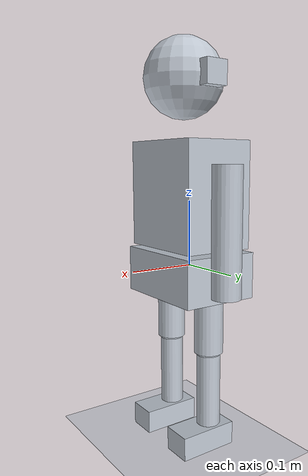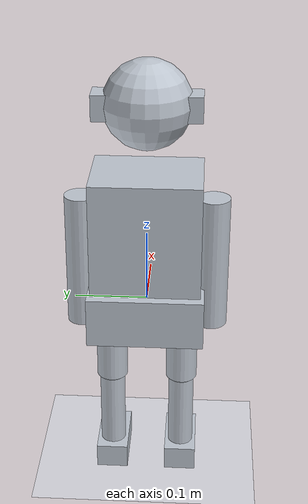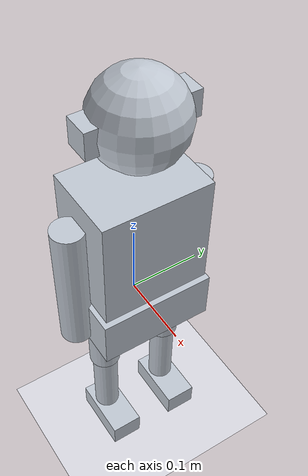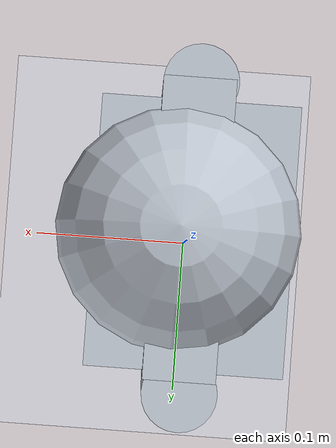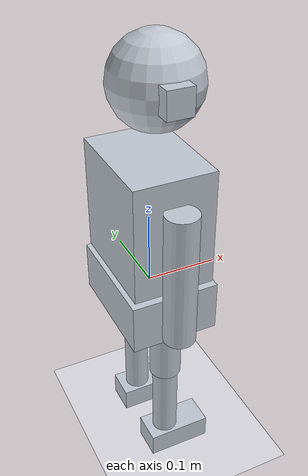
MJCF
<mujoco model="cara_full_body">
  <compiler angle="radian" autolimits="true"/>
  <option gravity="0 0 0" timestep="0.002"/>   <!-- real g = 9.81; off for inspection -->

  <visual>
    <headlight diffuse="0.6 0.6 0.6" ambient="0.35 0.35 0.35" specular="0 0 0"/>
    <rgba haze="0.15 0.25 0.35 1"/>
    <global azimuth="130" elevation="-20"/>
  </visual>

  <default>
    <geom contype="0" conaffinity="0" group="2"/>   <!-- link geoms: visual only -->
    <site type="sphere" size="0.006" group="3"/>
  </default>

  <worldbody>
    <light pos="0 0 1.5" dir="0 0 -1" diffuse="0.5 0.5 0.5"/>
    <geom name="floor" type="plane" size="0.6 0.6 0.02" pos="0 0 -0.275" rgba="0.85 0.85 0.88 1" group="1"/>

    <body name="pelvis" pos="0 0 0">
      <inertial pos="0 0 -0.01" mass="1.1" diaginertia="0.00279583333 0.00176916667 0.00366666667"/>
      <geom type="box" size="0.06 0.08 0.035" pos="0 0 -0.01" rgba="0.75 0.78 0.82 1"/>
      <site name="pelvis_frame" pos="0 0 0" rgba="0.9 0.5 0.2 1"/>
      <body name="l_thigh" pos="0 0.05 0">
        <joint name="l_hip_yaw" type="hinge" pos="0 0 0" axis="0 0 1" range="-0.79 0.79"/>
        <joint name="l_hip_roll" type="hinge" pos="0 0 0" axis="1 0 0" range="-0.52 0.61"/>
        <joint name="l_hip_pitch" type="hinge" pos="0 0 0" axis="0 1 0" range="-1.75 1.05"/>
        <inertial pos="0 0 -0.066" mass="0.22" diaginertia="0.000264 0.000264 5.324e-05"/>
        <geom type="cylinder" size="0.022 0.06" pos="0 0 -0.066" rgba="0.75 0.78 0.82 1"/>
        <site name="l_thigh_frame" pos="0 0 0" rgba="0.9 0.5 0.2 1"/>
        <body name="l_shin" pos="0 0 -0.12">
          <joint name="l_knee_pitch" type="hinge" pos="0 0 0" axis="0 1 0" range="0 2.36"/>
          <inertial pos="0 0 -0.0696" mass="0.18" diaginertia="0.000216 0.000216 2.916e-05"/>
          <geom type="cylinder" size="0.018 0.06" pos="0 0 -0.0696" rgba="0.75 0.78 0.82 1"/>
          <site name="l_shin_frame" pos="0 0 0" rgba="0.9 0.5 0.2 1"/>
          <body name="l_foot" pos="0 0 -0.12">
            <joint name="l_ankle_pitch" type="hinge" pos="0 0 0" axis="0 1 0" range="-0.87 0.61"/>
            <joint name="l_ankle_roll" type="hinge" pos="0 0 0" axis="1 0 0" range="-0.44 0.44"/>
            <inertial pos="0.015 0 -0.0175" mass="0.08" diaginertia="2.16666667e-05 6.21666667e-05 6.75e-05"/>
            <geom type="box" size="0.045 0.0225 0.0175" pos="0.015 0 -0.0175" rgba="0.75 0.78 0.82 1"/>
            <site name="l_foot_frame" pos="0 0 0" rgba="0.9 0.5 0.2 1"/>
            <site name="l_foot_sole_center" pos="0.015 0 -0.035" rgba="0.2 0.7 0.4 1"/>
          </body>
        </body>
      </body>
      <body name="torso" pos="0 0 0.035">
        <!-- base_to_torso: fixed, welded -->
        <inertial pos="0 0 0.075" mass="1.2" diaginertia="0.00481 0.00377 0.00346"/>
        <geom type="box" size="0.055 0.075 0.08" pos="0 0 0.075" rgba="0.75 0.78 0.82 1"/>
        <site name="torso_frame" pos="0 0 0" rgba="0.9 0.5 0.2 1"/>
        <body name="head" pos="0 0 0.195">
          <!-- neck_yaw: revolute (locked), welded -->
          <!-- neck_roll: revolute (locked), welded -->
          <!-- neck_pitch: revolute (locked), welded -->
          <inertial pos="0.01 0 0.05" mass="0.35" diaginertia="0.000504 0.000504 0.000504"/>
          <geom type="sphere" size="0.06" pos="0.01 0 0.05" rgba="0.75 0.78 0.82 1"/>
          <site name="head_frame" pos="0 0 0" rgba="0.9 0.5 0.2 1"/>
          <body name="l_ear" pos="0.005 0.055 0.05">
            <!-- l_ear_joint: revolute (locked), welded -->
            <inertial pos="0 0 0" mass="0.02" diaginertia="4.08333333e-06 4.08333333e-06 4.08333333e-06"/>
            <geom type="box" size="0.0175 0.0175 0.0175" pos="0 0 0" rgba="0.75 0.78 0.82 1"/>
            <site name="l_ear_frame" pos="0 0 0" rgba="0.9 0.5 0.2 1"/>
          </body>
          <body name="l_ear_servo" pos="0.005 0.03 0.045">
            <!-- l_ear_servo_mount: fixed, welded -->
            <inertial pos="0 0 0" mass="0.01" diaginertia="5.60833333e-07 7.74166667e-07 4.53333333e-07"/>
            <geom type="box" size="0.01 0.006 0.0115" pos="0 0 0" rgba="0.75 0.78 0.82 1"/>
            <site name="l_ear_servo_frame" pos="0 0 0" rgba="0.9 0.5 0.2 1"/>
          </body>
          <body name="r_ear" pos="0.005 -0.055 0.05">
            <!-- r_ear_joint: revolute (locked), welded -->
            <inertial pos="0 0 0" mass="0.02" diaginertia="4.08333333e-06 4.08333333e-06 4.08333333e-06"/>
            <geom type="box" size="0.0175 0.0175 0.0175" pos="0 0 0" rgba="0.75 0.78 0.82 1"/>
            <site name="r_ear_frame" pos="0 0 0" rgba="0.9 0.5 0.2 1"/>
          </body>
          <body name="r_ear_servo" pos="0.005 -0.03 0.045">
            <!-- r_ear_servo_mount: fixed, welded -->
            <inertial pos="0 0 0" mass="0.01" diaginertia="5.60833333e-07 7.74166667e-07 4.53333333e-07"/>
            <geom type="box" size="0.01 0.006 0.0115" pos="0 0 0" rgba="0.75 0.78 0.82 1"/>
            <site name="r_ear_servo_frame" pos="0 0 0" rgba="0.9 0.5 0.2 1"/>
          </body>
        </body>
        <body name="l_arm" pos="0 0.09 0.12">
          <!-- l_shoulder: fixed, welded -->
          <inertial pos="0 0 -0.095" mass="0.18" diaginertia="0.0005415 0.0005415 4.356e-05"/>
          <geom type="cylinder" size="0.022 0.095" pos="0 0 -0.095" rgba="0.75 0.78 0.82 1"/>
          <site name="l_arm_frame" pos="0 0 0" rgba="0.9 0.5 0.2 1"/>
        </body>
        <body name="r_arm" pos="0 -0.09 0.12">
          <!-- r_shoulder: fixed, welded -->
          <inertial pos="0 0 -0.095" mass="0.18" diaginertia="0.0005415 0.0005415 4.356e-05"/>
          <geom type="cylinder" size="0.022 0.095" pos="0 0 -0.095" rgba="0.75 0.78 0.82 1"/>
          <site name="r_arm_frame" pos="0 0 0" rgba="0.9 0.5 0.2 1"/>
        </body>
      </body>
      <body name="jetson" pos="0 0 -0.03">
        <!-- mount_jetson: fixed, welded -->
        <inertial pos="0 0 0" mass="0.15" diaginertia="7.25e-05 7.25e-05 0.0001225"/>
        <geom type="box" size="0.035 0.035 0.015" pos="0 0 0" rgba="0.75 0.78 0.82 1"/>
        <site name="jetson_frame" pos="0 0 0" rgba="0.9 0.5 0.2 1"/>
      </body>
      <body name="battery" pos="0 0 -0.03">
        <!-- mount_battery: fixed, welded -->
        <inertial pos="0 0 0" mass="0.25" diaginertia="9.375e-05 0.0001875 0.00024375"/>
        <geom type="box" size="0.045 0.03 0.015" pos="0 0 0" rgba="0.75 0.78 0.82 1"/>
        <site name="battery_frame" pos="0 0 0" rgba="0.9 0.5 0.2 1"/>
      </body>
      <body name="r_thigh" pos="0 -0.05 0">
        <joint name="r_hip_yaw" type="hinge" pos="0 0 0" axis="0 0 -1" range="-0.79 0.79"/>
        <joint name="r_hip_roll" type="hinge" pos="0 0 0" axis="-1 0 0" range="-0.52 0.61"/>
        <joint name="r_hip_pitch" type="hinge" pos="0 0 0" axis="0 1 0" range="-1.75 1.05"/>
        <inertial pos="0 0 -0.066" mass="0.22" diaginertia="0.000264 0.000264 5.324e-05"/>
        <geom type="cylinder" size="0.022 0.06" pos="0 0 -0.066" rgba="0.75 0.78 0.82 1"/>
        <site name="r_thigh_frame" pos="0 0 0" rgba="0.9 0.5 0.2 1"/>
        <body name="r_shin" pos="0 0 -0.12">
          <joint name="r_knee_pitch" type="hinge" pos="0 0 0" axis="0 1 0" range="0 2.36"/>
          <inertial pos="0 0 -0.0696" mass="0.18" diaginertia="0.000216 0.000216 2.916e-05"/>
          <geom type="cylinder" size="0.018 0.06" pos="0 0 -0.0696" rgba="0.75 0.78 0.82 1"/>
          <site name="r_shin_frame" pos="0 0 0" rgba="0.9 0.5 0.2 1"/>
          <body name="r_foot" pos="0 0 -0.12">
            <joint name="r_ankle_pitch" type="hinge" pos="0 0 0" axis="0 1 0" range="-0.87 0.61"/>
            <joint name="r_ankle_roll" type="hinge" pos="0 0 0" axis="-1 0 0" range="-0.44 0.44"/>
            <inertial pos="0.015 0 -0.0175" mass="0.08" diaginertia="2.16666667e-05 6.21666667e-05 6.75e-05"/>
            <geom type="box" size="0.045 0.0225 0.0175" pos="0.015 0 -0.0175" rgba="0.75 0.78 0.82 1"/>
            <site name="r_foot_frame" pos="0 0 0" rgba="0.9 0.5 0.2 1"/>
            <site name="r_foot_sole_center" pos="0.015 0 -0.035" rgba="0.2 0.7 0.4 1"/>
          </body>
        </body>
      </body>
    </body>
  </worldbody>

  <keyframe>
    <key name="stand_nominal" qpos="0 0 -0.1 0.2 -0.1 0 0 0 -0.1 0.2 -0.1 0"/>
    <key name="semi_squat" qpos="0 0 -0.55 1.1 -0.55 0 0 0 -0.55 1.1 -0.55 0"/>
    <key name="stand_wide" qpos="0 0.15 -0.1 0.2 -0.1 -0.15 0 0.15 -0.1 0.2 -0.1 -0.15"/>
  </keyframe>

</mujoco>
